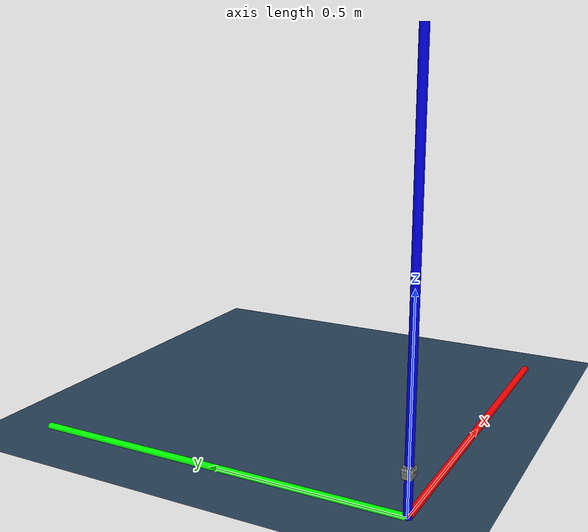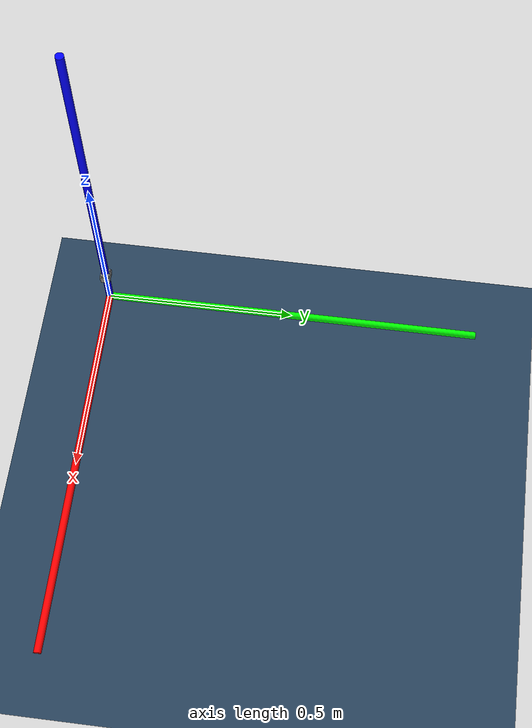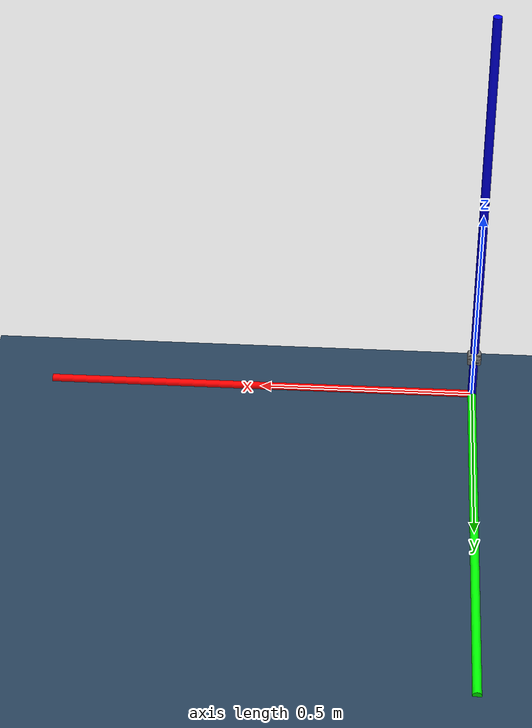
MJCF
<mujoco model="gelsight_mini scene">

	<asset>
		<mesh name="gelsight_mini" file="assets/gsmini_shell.stl" scale="0.001 0.001 0.001" />
	</asset>

	<worldbody>
		<body name="gelsight_mini" pos="0 0 0.1" quat="1 1 0 0">
			<joint type="free" />
			<geom name="gelsight_mini" type="mesh" mesh="gelsight_mini" condim="6" mass="0.3"
				solref="0.001 0.001" />
			<camera name="gelsight_mini" mode="fixed" fovy="35" quat="1 1 0 0" />
		</body>
	</worldbody>

	<option timestep="0.002" integrator="implicitfast" solver="Newton" gravity="0 0 -9.82" cone="elliptic" />

	<statistic center="0.3 0 0.3" extent="0.8" meansize="0.08" />

	<visual>
		<headlight diffuse="0.6 0.6 0.6" ambient="0.1 0.1 0.1" specular="0 0 0" />
		<rgba haze="0.15 0.25 0.35 1" />
		<global azimuth="120" elevation="-20" />
	</visual>

	<asset>
		<texture type="skybox" builtin="gradient" rgb1="0.3 0.5 0.7" rgb2="0 0 0" width="512"
			height="3072" />
		<texture type="2d" name="groundplane" builtin="checker" mark="edge" rgb1="0.2 0.3 0.4"
			rgb2="0.1 0.2 0.3" markrgb="0.8 0.8 0.8" width="300" height="300" />
		<material name="groundplane" texture="groundplane" texuniform="true" texrepeat="5 5"
			reflectance="0.2" />
	</asset>

	<worldbody>
		<light pos="0 0 1.5" dir="0 0 -1" directional="true" />
		<geom name="floor" size="0 0 0.05" type="plane" material="groundplane"/>
		<geom name="x-axis" group="2" type="cylinder" contype="0" conaffinity="0"
			fromto="0 0 0 1 0 0" size="0.01" rgba="1 0 0 1" />
		<geom name="y-axis" group="2" type="cylinder" contype="0" conaffinity="0"
			fromto="0 0 0 0 1 0" size="0.01" rgba="0 1 0 1" />
		<geom name="z-axis" group="2" type="cylinder" contype="0" conaffinity="0"
			fromto="0 0 0 0 0 1" size="0.01" rgba="0 0 1 1" />

	</worldbody>
</mujoco>
